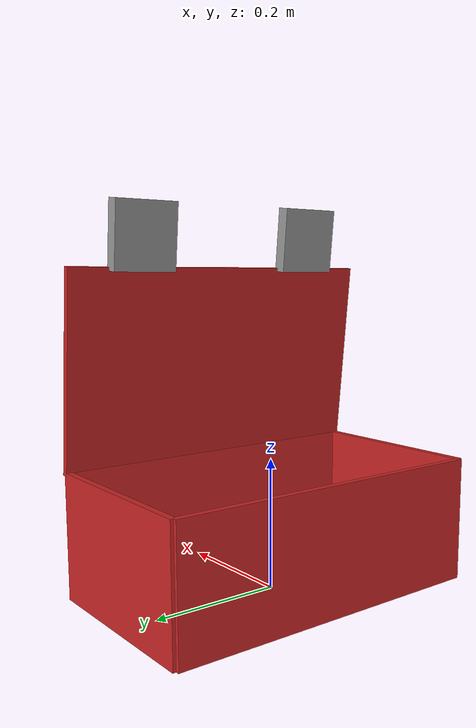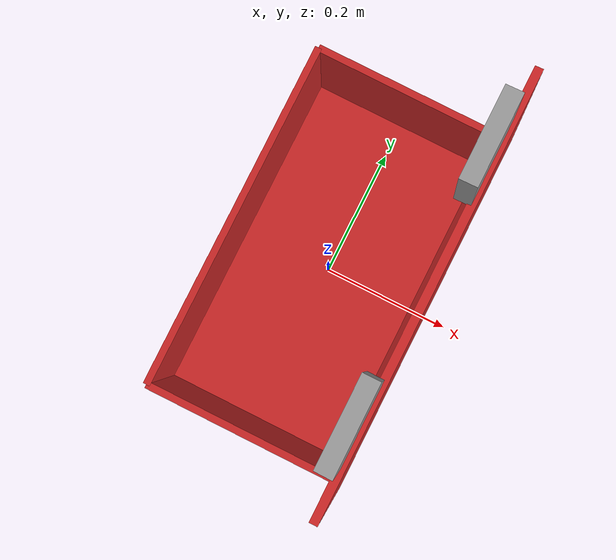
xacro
<?xml version="1.0"?>
<robot name="suitcase"
       xmlns:xi="http://www.w3.org/2001/XInclude"
       xmlns:gazebo="http://playerstage.sourceforge.net/gazebo/xmlschema/#gz"
       xmlns:model="http://playerstage.sourceforge.net/gazebo/xmlschema/#model"
       xmlns:sensor="http://playerstage.sourceforge.net/gazebo/xmlschema/#sensor"
       xmlns:body="http://playerstage.sourceforge.net/gazebo/xmlschema/#body"
       xmlns:geom="http://playerstage.sourceforge.net/gazebo/xmlschema/#geom"
       xmlns:joint="http://playerstage.sourceforge.net/gazebo/xmlschema/#joint"
       xmlns:interface="http://playerstage.sourceforge.net/gazebo/xmlschema/#interface"
       xmlns:rendering="http://playerstage.sourceforge.net/gazebo/xmlschema/#rendering"
       xmlns:renderable="http://playerstage.sourceforge.net/gazebo/xmlschema/#renderable"
       xmlns:controller="http://playerstage.sourceforge.net/gazebo/xmlschema/#controller"
       xmlns:physics="http://playerstage.sourceforge.net/gazebo/xmlschema/#physics">

  <property name="suitcase_height" value="0.191" />
  <property name="suitcase_width" value="0.288" />
  <property name="suitcase_depth" value="0.514" />
  <property name="suitcase_x" value="0.0" />
  <property name="suitcase_y" value="0.0" />
  <property name="suitcase_z" value="0.0" />

  <property name="suitcase_wall_thickness" value="0.01"/>

  <property name="M_PI" value="3.1415926535897931" />

  <property name="lock_height" value="0.02" />
  <property name="lock_width" value="0.1" />
  <property name="lock_depth" value="0.1" />

  <link name="suitcase_bottom_link">
    <inertial>
      <mass value="20.0" />
      <origin xyz="${suitcase_x} ${suitcase_y} ${suitcase_z+suitcase_wall_thickness/2}" />
      <inertia ixx="1" ixy="0"  ixz="0"
               iyy="1" iyz="0"
               izz="1" />
    </inertial>
    <visual>
      <origin xyz="${suitcase_x} ${suitcase_y} ${suitcase_z+suitcase_wall_thickness/2}" />
      <geometry>
        <box size="${suitcase_width} ${suitcase_depth} ${suitcase_wall_thickness}" />
      </geometry>
    </visual>
    <collision>
      <origin xyz="${suitcase_x} ${suitcase_y} ${suitcase_z+suitcase_wall_thickness/2}" />
      <geometry>
        <box size="${suitcase_width} ${suitcase_depth} ${suitcase_wall_thickness}" />
      </geometry>
    </collision>
  </link>
  <gazebo reference="suitcase_bottom_link">
    <material>Gazebo/Red</material>
    <mu1>50.0</mu1>
    <mu2>50.0</mu2>
    <kp>1000000.0</kp>
    <kd>1.0</kd>
  </gazebo>

  <joint name="wall1_joint" type="fixed" >
    <parent link="suitcase_bottom_link" />
    <origin xyz="${suitcase_x+suitcase_width/2} ${suitcase_y} ${suitcase_z}" rpy="0 0 0" />
    <child link="wall1_link" />
  </joint>
  <link name="wall1_link">
    <inertial>
      <mass value="3.0" />
      <origin xyz="0 0 ${suitcase_height/2}" />
      <inertia ixx="1" ixy="0"  ixz="0"
               iyy="1" iyz="0"
               izz="1" />
    </inertial>
    <visual>
      <origin xyz="0.0 0.0 ${suitcase_height/2}" rpy="0 0 0" />
      <geometry>
        <box size="${suitcase_wall_thickness} ${suitcase_depth} ${suitcase_height}" />
      </geometry>
    </visual>
    <collision>
      <origin xyz="0.0 0.0 ${suitcase_height/2}" rpy="0.0 0.0 0.0" />
      <geometry>
        <box size="${suitcase_wall_thickness} ${suitcase_depth} ${suitcase_height}" />
      </geometry>
    </collision>
  </link>
  <gazebo reference="wall1_link">
    <material>Gazebo/Red</material>
    <mu1>1000.0</mu1>
    <mu2>1000.0</mu2>
    <kp>10000000.0</kp>
    <kd>1.0</kd>
    <selfCollide>true</selfCollide>
  </gazebo>

  <joint name="wall2_joint" type="fixed" >
    <parent link="suitcase_bottom_link" />
    <origin xyz="${suitcase_x-suitcase_width/2} ${suitcase_y} ${suitcase_z}" rpy="0 0 0" />
    <child link="wall2_link" />
  </joint>
  <link name="wall2_link">
    <inertial>
      <mass value="3.0" />
      <origin xyz="0 0 ${suitcase_height/2}" />
      <inertia ixx="1" ixy="0"  ixz="0"
               iyy="1" iyz="0"
               izz="1" />
    </inertial>
    <visual>
      <origin xyz="0.0 0.0 ${suitcase_height/2}" rpy="0 0 0" />
      <geometry>
        <box size="${suitcase_wall_thickness} ${suitcase_depth} ${suitcase_height}" />
      </geometry>
    </visual>
    <collision>
      <origin xyz="0.0 0.0 ${suitcase_height/2}" rpy="0.0 0.0 0.0" />
      <geometry>
        <box size="${suitcase_wall_thickness} ${suitcase_depth} ${suitcase_height}" />
      </geometry>
    </collision>
  </link>
  <gazebo reference="wall2_link">
    <material>Gazebo/Red</material>
    <mu1>1000.0</mu1>
    <mu2>1000.0</mu2>
    <kp>10000000.0</kp>
    <kd>1.0</kd>
    <selfCollide>true</selfCollide>
  </gazebo>

  <joint name="wall3_joint" type="fixed" >
    <parent link="suitcase_bottom_link" />
    <origin xyz="${suitcase_x} ${suitcase_y+suitcase_depth/2} ${suitcase_z}" rpy="0 0 0" />
    <child link="wall3_link" />
  </joint>
  <link name="wall3_link">
    <inertial>
      <mass value="3.0" />
      <origin xyz="0 0 ${suitcase_height/2}" />
      <inertia ixx="1" ixy="0"  ixz="0"
               iyy="1" iyz="0"
               izz="1" />
    </inertial>
    <visual>
      <origin xyz="0.0 0.0 ${suitcase_height/2}" rpy="0 0 0" />
      <geometry>
        <box size="${suitcase_width} ${suitcase_wall_thickness} ${suitcase_height}" />
      </geometry>
    </visual>
    <collision>
      <origin xyz="0.0 0.0 ${suitcase_height/2}" rpy="0.0 0.0 0.0" />
      <geometry>
        <box size="${suitcase_width} ${suitcase_wall_thickness} ${suitcase_height}" />
      </geometry>
    </collision>
  </link>
  <gazebo reference="wall3_link">
    <material>Gazebo/Red</material>
    <mu1>1000.0</mu1>
    <mu2>1000.0</mu2>
    <kp>10000000.0</kp>
    <kd>1.0</kd>
    <selfCollide>true</selfCollide>
  </gazebo>

  <joint name="wall4_joint" type="fixed" >
    <parent link="suitcase_bottom_link" />
    <origin xyz="${suitcase_x} ${suitcase_y-suitcase_depth/2} ${suitcase_z}" rpy="0 0 0" />
    <child link="wall4_link" />
  </joint>
  <link name="wall4_link">
    <inertial>
      <mass value="3.0" />
      <origin xyz="0 0 ${suitcase_height/2}" />
      <inertia ixx="1" ixy="0"  ixz="0"
               iyy="1" iyz="0"
               izz="1" />
    </inertial>
    <visual>
      <origin xyz="0.0 0.0 ${suitcase_height/2}" rpy="0 0 0" />
      <geometry>
        <box size="${suitcase_width} ${suitcase_wall_thickness} ${suitcase_height}" />
      </geometry>
    </visual>
    <collision>
      <origin xyz="0.0 0.0 ${suitcase_height/2}" rpy="0.0 0.0 0.0" />
      <geometry>
        <box size="${suitcase_width} ${suitcase_wall_thickness} ${suitcase_height}" />
      </geometry>
    </collision>
  </link>
  <gazebo reference="wall4_link">
    <material>Gazebo/Red</material>
    <mu1>1000.0</mu1>
    <mu2>1000.0</mu2>
    <kp>10000000.0</kp>
    <kd>1.0</kd>
    <selfCollide>true</selfCollide>
  </gazebo>

  <joint name="lid_joint" type="revolute" >
    <axis xyz="0 -1 0"/>
    <limit effort="1000.0" lower="0.2" upper="${M_PI}" velocity="0.5"/>
    <parent link="wall1_link" />
    <!--origin xyz="${suitcase_x+suitcase_width/2} ${suitcase_y} ${suitcase_z+suitcase_height}" rpy="0 0 0" /-->
    <origin xyz="0 0 ${suitcase_height}" rpy="0 0 0" />
    <child link="suitcase_lid_link" />
    <dynamics damping="50.5"/>
  </joint>

  <link name="suitcase_lid_link">
    <inertial>
      <mass value="0.5" />
      <origin xyz="${suitcase_width/2} 0 0" />
      <inertia ixx="1" ixy="0"  ixz="0"
               iyy="1" iyz="0"
               izz="1" />
    </inertial>
    <visual>
      <origin xyz="${suitcase_width/2} 0 0" />
      <geometry>
        <box size="${suitcase_width + 0.01} ${suitcase_depth + 0.01} ${suitcase_wall_thickness}" />
      </geometry>
    </visual>
    <collision>
      <origin xyz="${suitcase_width/2} 0 0" />
      <geometry>
        <box size="${suitcase_width + 0.01} ${suitcase_depth + 0.01} ${suitcase_wall_thickness}" />
      </geometry>
    </collision>
  </link>
  <gazebo reference="suitcase_lid_link">
    <material>Gazebo/Red</material>
    <mu1>50.0</mu1>
    <mu2>50.0</mu2>
    <kp>1000000.0</kp>
    <kd>1.0</kd>
  </gazebo>

  <joint name="lock1_joint" type="fixed" >
    <parent link="suitcase_lid_link" />
    <origin xyz="${suitcase_width} -0.15 0" rpy="0 0 0" />
    <child link="lock1_link" />
  </joint>
  <link name="lock1_link">
    <inertial>
      <mass value="0.1" />
      <origin xyz="${lock_width/2} 0 ${lock_height/2}" />
      <inertia ixx="0.1" ixy="0"  ixz="0"
               iyy="0.1" iyz="0"
               izz="0.1" />
    </inertial>
    <visual>
      <origin xyz="${lock_width/2} 0 ${lock_height/2}" rpy="0 0 0" />
      <geometry>
        <box size="${lock_width} ${lock_depth} ${lock_height}" />
      </geometry>
    </visual>
    <collision>
      <origin xyz="${lock_width/2} 0 ${lock_height/2}" rpy="0.0 0.0 0.0" />
      <geometry>
        <box size="${lock_width} ${lock_depth} ${lock_height}" />
      </geometry>
    </collision>
  </link>
  <gazebo reference="lock1_link">
    <material>Gazebo/Grey</material>
    <mu1>1000.0</mu1>
    <mu2>1000.0</mu2>
    <kp>10000000.0</kp>
    <kd>1.0</kd>
    <selfCollide>true</selfCollide>
  </gazebo>

  <joint name="lock2_joint" type="fixed" >
    <parent link="suitcase_lid_link" />
    <origin xyz="${suitcase_width} 0.15 0" rpy="0 0 0" />
    <child link="lock2_link" />
  </joint>
  <link name="lock2_link">
    <inertial>
      <mass value="0.1" />
      <origin xyz="${lock_width/2} 0 ${lock_height/2}" />
      <inertia ixx="0.1" ixy="0"  ixz="0"
               iyy="0.1" iyz="0"
               izz="0.1" />
    </inertial>
    <visual>
      <origin xyz="${lock_width/2} 0 ${lock_height/2}" rpy="0 0 0" />
      <geometry>
        <box size="${lock_width} ${lock_depth} ${lock_height}" />
      </geometry>
    </visual>
    <collision>
      <origin xyz="${lock_width/2} 0 ${lock_height/2}" rpy="0.0 0.0 0.0" />
      <geometry>
        <box size="${lock_width} ${lock_depth} ${lock_height}" />
      </geometry>
    </collision>
  </link>
  <gazebo reference="lock2_link">
    <material>Gazebo/Grey</material>
    <mu1>1000.0</mu1>
    <mu2>1000.0</mu2>
    <kp>10000000.0</kp>
    <kd>1.0</kd>
    <selfCollide>true</selfCollide>
  </gazebo>

  <gazebo>
    <turnGravityOff>false</turnGravityOff>
    <canonicalBody>suitcase_bottom_link</canonicalBody>
  </gazebo>

</robot>
